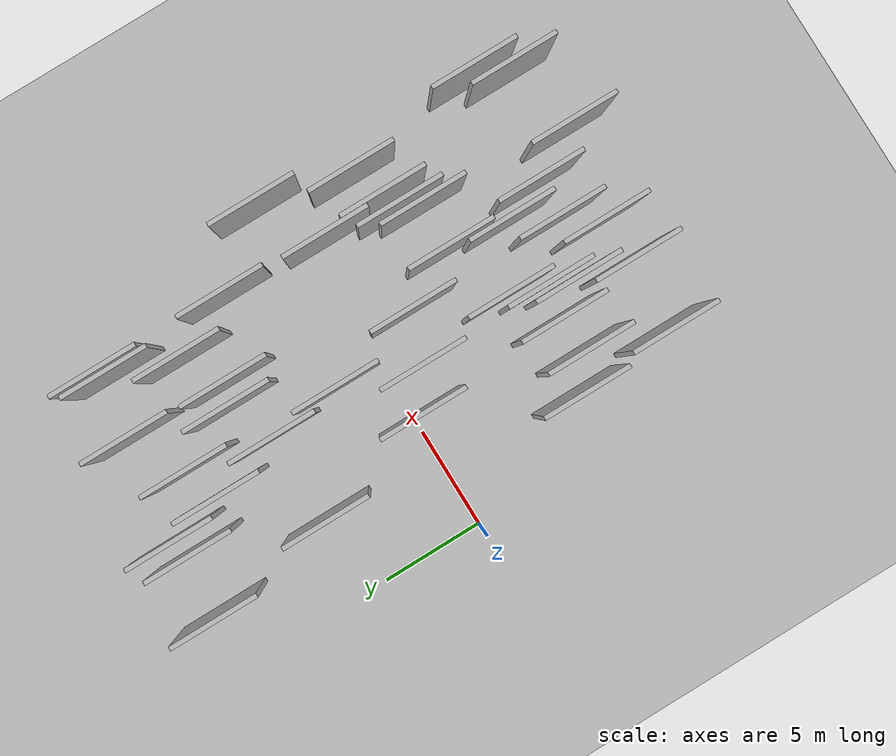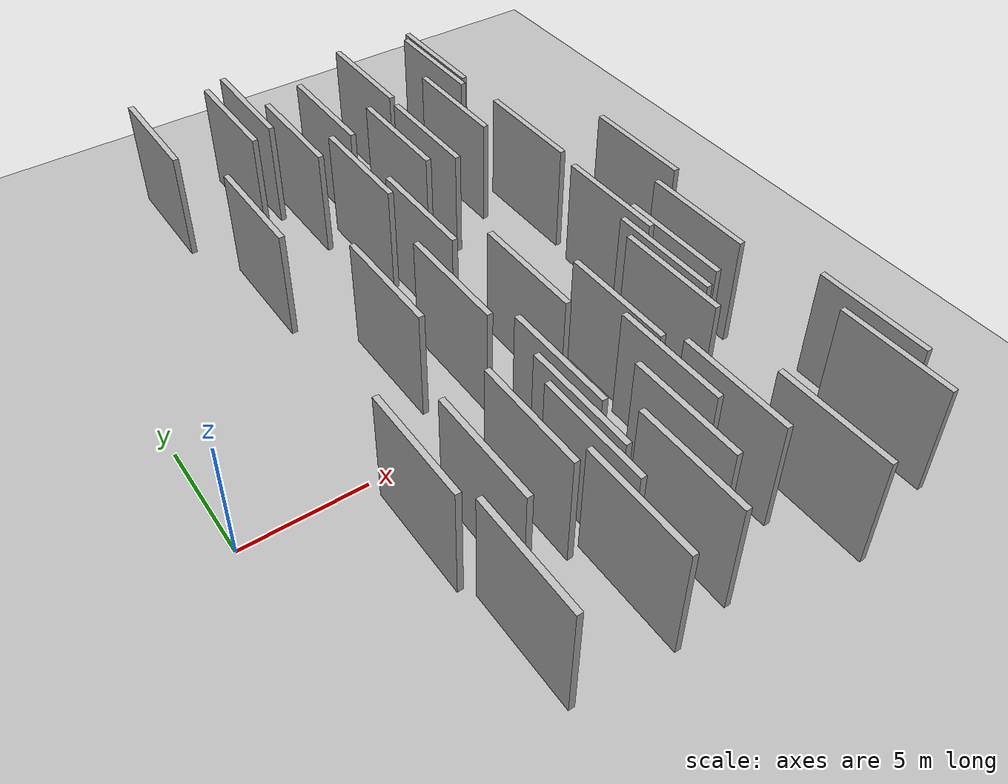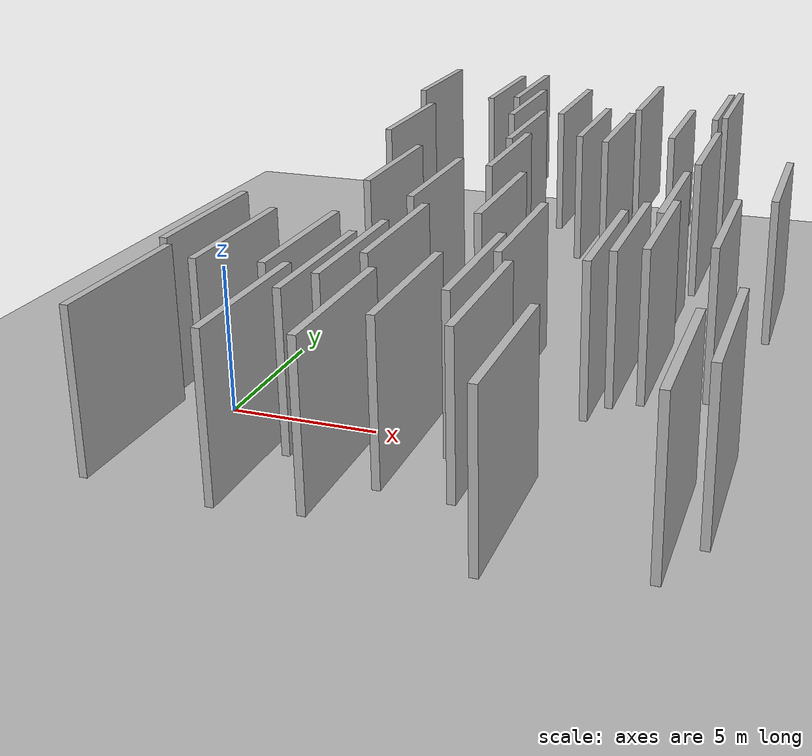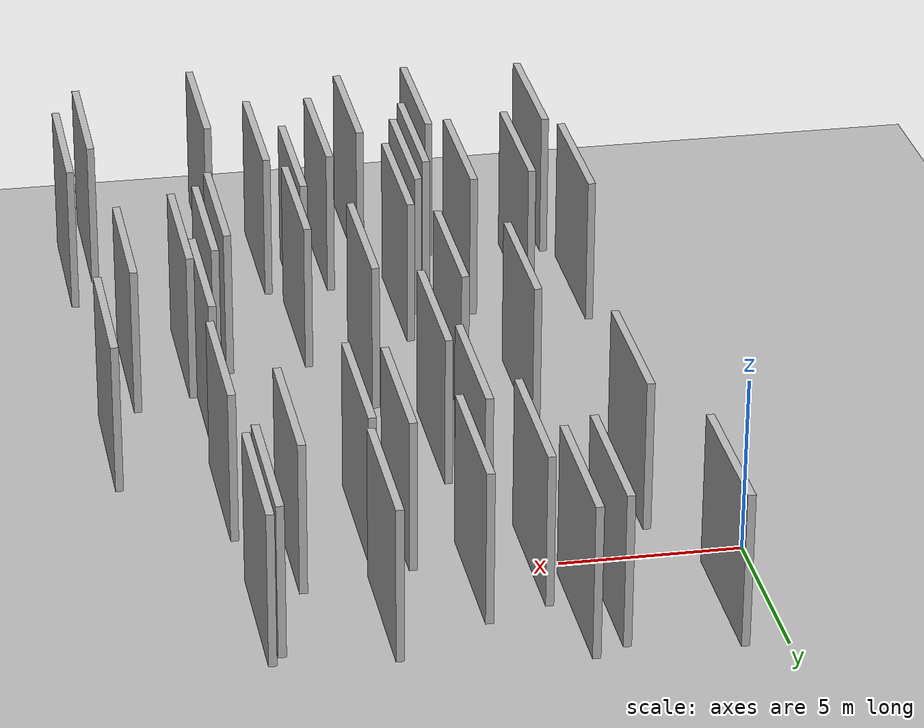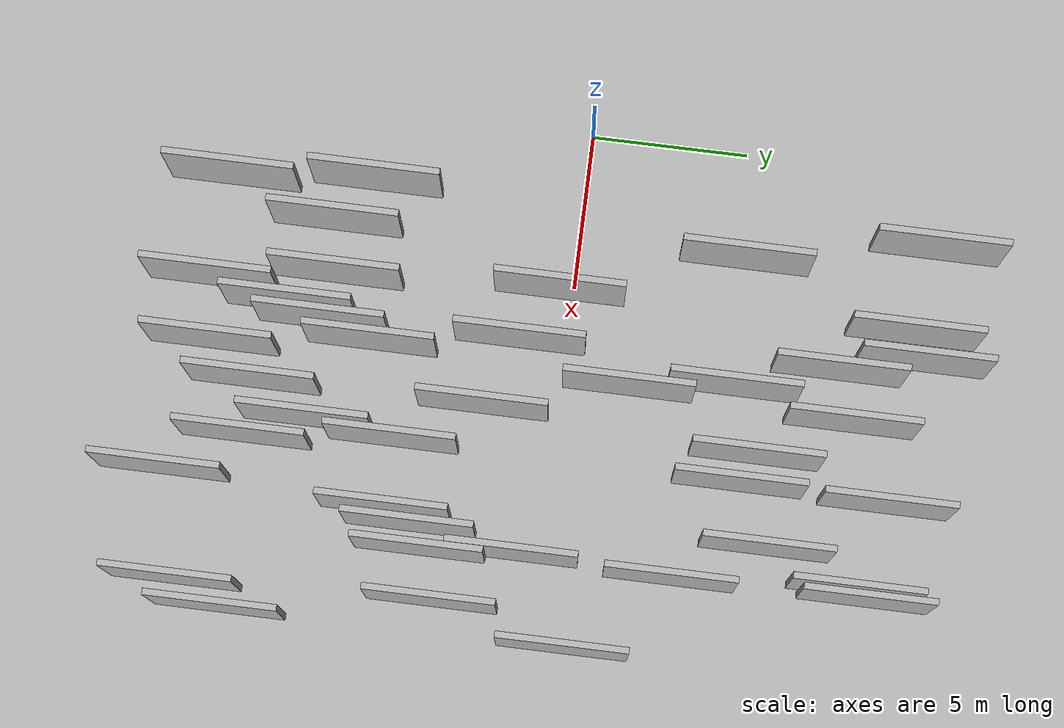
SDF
<?xml version="1.0" encoding="utf-8"?>

<sdf version="1.6">

   <world name="default">

      <gui fullscreen="0">

         <camera name="user_camera">

            <pose>-15 0 4.57585 0 0 0</pose>

            <view_controller>orbit</view_controller>

         </camera>

      </gui>

      <scene>

         <sky>

           <clouds>

             <speed>12</speed>

           </clouds>

         </sky>

         <ambient>0.4 0.4 0.4 1</ambient>

         <background>0.7 0.7 0.7 1</background>

         <shadows>1</shadows>

      </scene>

      <gravity>0 0 -9.8066</gravity>

      <magnetic_field>6e-06 2.3e-05 -4.2e-05</magnetic_field>

      <physics default="0" name="default_physics" type="ode">

         <ode>

            <solver>

               <type>quick</type>

               <iters>10</iters>

               <sor>1.0</sor>

               <use_dynamic_moi_rescaling>0</use_dynamic_moi_rescaling>

            </solver>

            <constraints>

               <cfm>0</cfm>

               <erp>0.2</erp>

               <contact_max_correcting_vel>100</contact_max_correcting_vel>

               <contact_surface_layer>0.001</contact_surface_layer>

            </constraints>

         </ode>

         <max_step_size>0.004</max_step_size>

         <real_time_factor>1</real_time_factor>

         <real_time_update_rate>250</real_time_update_rate>

      </physics>

      <light name="sun" type="directional">

         <cast_shadows>1</cast_shadows>

         <pose>0 0 10 0 0 0</pose>

         <diffuse>0.8 0.8 0.8 1</diffuse>

         <specular>0.2 0.2 0.2 1</specular>

         <attenuation>

            <range>1000</range>

            <constant>0.9</constant>

            <linear>0.01</linear>

            <quadratic>0.001</quadratic>

         </attenuation>

         <direction>-0.5 0.1 -0.9</direction>

      </light>

      <include>

         <name>ground_plane_1</name>

         <uri>model://HANNAS_ground_plane</uri>

         <pose>0 0 0  0 0 0</pose>

      </include>

      <include>

         <name>ground_plane_2</name>

         <uri>model://HANNAS_ground_plane</uri>

         <pose>100 0 0  0 0 0</pose>

      </include>

      <model name="HANNAS_wall_1">

         <static>1</static>

         <pose frame="">9.0233 8.9103 5.0 0.000000 0.000000 1.570796</pose>

         <link name="link">

            <pose frame="">0 0 2.00 0 0 0</pose>

            <collision name="collision">

               <geometry>

                  <box>

                     <size>4.00 0.2 4.00</size>

                  </box>

               </geometry>

               <max_contacts>10</max_contacts>

               <surface>

                  <contact>

                     <ode/>

                  </contact>

                  <bounce/>

                  <friction>

                     <torsional>

                        <ode/>

                     </torsional>

                     <ode/>

                  </friction>

               </surface>

            </collision>

            <visual name="visual">

               <cast_shadows>0</cast_shadows>

               <geometry>

                  <box>

                     <size>4.00 0.2 4.00</size>

                  </box>

               </geometry>

               <material>

                  <script>

                     <uri>model://HANNAS_wall/materials/scripts</uri>

                     <uri>model://HANNAS_wall/materials/textures</uri>

                     <name>vrc/HANNAS_wall</name>

                  </script>

               </material>

            </visual>

            <self_collide>0</self_collide>

            <enable_wind>0</enable_wind>

            <kinematic>0</kinematic>

         </link>

      </model>

      <model name="HANNAS_wall_2">

         <static>1</static>

         <pose frame="">12.9015 -11.6569 5.0 0.000000 0.000000 1.570796</pose>

         <link name="link">

            <pose frame="">0 0 2.00 0 0 0</pose>

            <collision name="collision">

               <geometry>

                  <box>

                     <size>4.00 0.2 4.00</size>

                  </box>

               </geometry>

               <max_contacts>10</max_contacts>

               <surface>

                  <contact>

                     <ode/>

                  </contact>

                  <bounce/>

                  <friction>

                     <torsional>

                        <ode/>

                     </torsional>

                     <ode/>

                  </friction>

               </surface>

            </collision>

            <visual name="visual">

               <cast_shadows>0</cast_shadows>

               <geometry>

                  <box>

                     <size>4.00 0.2 4.00</size>

                  </box>

               </geometry>

               <material>

                  <script>

                     <uri>model://HANNAS_wall/materials/scripts</uri>

                     <uri>model://HANNAS_wall/materials/textures</uri>

                     <name>vrc/HANNAS_wall</name>

                  </script>

               </material>

            </visual>

            <self_collide>0</self_collide>

            <enable_wind>0</enable_wind>

            <kinematic>0</kinematic>

         </link>

      </model>

      <model name="HANNAS_wall_3">

         <static>1</static>

         <pose frame="">3.3442 -6.3121 5.0 0.000000 0.000000 1.570796</pose>

         <link name="link">

            <pose frame="">0 0 2.00 0 0 0</pose>

            <collision name="collision">

               <geometry>

                  <box>

                     <size>4.00 0.2 4.00</size>

                  </box>

               </geometry>

               <max_contacts>10</max_contacts>

               <surface>

                  <contact>

                     <ode/>

                  </contact>

                  <bounce/>

                  <friction>

                     <torsional>

                        <ode/>

                     </torsional>

                     <ode/>

                  </friction>

               </surface>

            </collision>

            <visual name="visual">

               <cast_shadows>0</cast_shadows>

               <geometry>

                  <box>

                     <size>4.00 0.2 4.00</size>

                  </box>

               </geometry>

               <material>

                  <script>

                     <uri>model://HANNAS_wall/materials/scripts</uri>

                     <uri>model://HANNAS_wall/materials/textures</uri>

                     <name>vrc/HANNAS_wall</name>

                  </script>

               </material>

            </visual>

            <self_collide>0</self_collide>

            <enable_wind>0</enable_wind>

            <kinematic>0</kinematic>

         </link>

      </model>

      <model name="HANNAS_wall_4">

         <static>1</static>

         <pose frame="">11.3757 10.2288 5.0 0.000000 0.000000 1.570796</pose>

         <link name="link">

            <pose frame="">0 0 2.00 0 0 0</pose>

            <collision name="collision">

               <geometry>

                  <box>

                     <size>4.00 0.2 4.00</size>

                  </box>

               </geometry>

               <max_contacts>10</max_contacts>

               <surface>

                  <contact>

                     <ode/>

                  </contact>

                  <bounce/>

                  <friction>

                     <torsional>

                        <ode/>

                     </torsional>

                     <ode/>

                  </friction>

               </surface>

            </collision>

            <visual name="visual">

               <cast_shadows>0</cast_shadows>

               <geometry>

                  <box>

                     <size>4.00 0.2 4.00</size>

                  </box>

               </geometry>

               <material>

                  <script>

                     <uri>model://HANNAS_wall/materials/scripts</uri>

                     <uri>model://HANNAS_wall/materials/textures</uri>

                     <name>vrc/HANNAS_wall</name>

                  </script>

               </material>

            </visual>

            <self_collide>0</self_collide>

            <enable_wind>0</enable_wind>

            <kinematic>0</kinematic>

         </link>

      </model>

      <model name="HANNAS_wall_5">

         <static>1</static>

         <pose frame="">7.6818 -1.3672 5.0 0.000000 0.000000 1.570796</pose>

         <link name="link">

            <pose frame="">0 0 2.00 0 0 0</pose>

            <collision name="collision">

               <geometry>

                  <box>

                     <size>4.00 0.2 4.00</size>

                  </box>

               </geometry>

               <max_contacts>10</max_contacts>

               <surface>

                  <contact>

                     <ode/>

                  </contact>

                  <bounce/>

                  <friction>

                     <torsional>

                        <ode/>

                     </torsional>

                     <ode/>

                  </friction>

               </surface>

            </collision>

            <visual name="visual">

               <cast_shadows>0</cast_shadows>

               <geometry>

                  <box>

                     <size>4.00 0.2 4.00</size>

                  </box>

               </geometry>

               <material>

                  <script>

                     <uri>model://HANNAS_wall/materials/scripts</uri>

                     <uri>model://HANNAS_wall/materials/textures</uri>

                     <name>vrc/HANNAS_wall</name>

                  </script>

               </material>

            </visual>

            <self_collide>0</self_collide>

            <enable_wind>0</enable_wind>

            <kinematic>0</kinematic>

         </link>

      </model>

      <model name="HANNAS_wall_6">

         <static>1</static>

         <pose frame="">4.3879 5.1636 5.0 0.000000 0.000000 1.570796</pose>

         <link name="link">

            <pose frame="">0 0 2.00 0 0 0</pose>

            <collision name="collision">

               <geometry>

                  <box>

                     <size>4.00 0.2 4.00</size>

                  </box>

               </geometry>

               <max_contacts>10</max_contacts>

               <surface>

                  <contact>

                     <ode/>

                  </contact>

                  <bounce/>

                  <friction>

                     <torsional>

                        <ode/>

                     </torsional>

                     <ode/>

                  </friction>

               </surface>

            </collision>

            <visual name="visual">

               <cast_shadows>0</cast_shadows>

               <geometry>

                  <box>

                     <size>4.00 0.2 4.00</size>

                  </box>

               </geometry>

               <material>

                  <script>

                     <uri>model://HANNAS_wall/materials/scripts</uri>

                     <uri>model://HANNAS_wall/materials/textures</uri>

                     <name>vrc/HANNAS_wall</name>

                  </script>

               </material>

            </visual>

            <self_collide>0</self_collide>

            <enable_wind>0</enable_wind>

            <kinematic>0</kinematic>

         </link>

      </model>

      <model name="HANNAS_wall_7">

         <static>1</static>

         <pose frame="">13.1029 6.7793 5.0 0.000000 0.000000 1.570796</pose>

         <link name="link">

            <pose frame="">0 0 2.00 0 0 0</pose>

            <collision name="collision">

               <geometry>

                  <box>

                     <size>4.00 0.2 4.00</size>

                  </box>

               </geometry>

               <max_contacts>10</max_contacts>

               <surface>

                  <contact>

                     <ode/>

                  </contact>

                  <bounce/>

                  <friction>

                     <torsional>

                        <ode/>

                     </torsional>

                     <ode/>

                  </friction>

               </surface>

            </collision>

            <visual name="visual">

               <cast_shadows>0</cast_shadows>

               <geometry>

                  <box>

                     <size>4.00 0.2 4.00</size>

                  </box>

               </geometry>

               <material>

                  <script>

                     <uri>model://HANNAS_wall/materials/scripts</uri>

                     <uri>model://HANNAS_wall/materials/textures</uri>

                     <name>vrc/HANNAS_wall</name>

                  </script>

               </material>

            </visual>

            <self_collide>0</self_collide>

            <enable_wind>0</enable_wind>

            <kinematic>0</kinematic>

         </link>

      </model>

      <model name="HANNAS_wall_8">

         <static>1</static>

         <pose frame="">16.1886 -10.8584 5.0 0.000000 0.000000 1.570796</pose>

         <link name="link">

            <pose frame="">0 0 2.00 0 0 0</pose>

            <collision name="collision">

               <geometry>

                  <box>

                     <size>4.00 0.2 4.00</size>

                  </box>

               </geometry>

               <max_contacts>10</max_contacts>

               <surface>

                  <contact>

                     <ode/>

                  </contact>

                  <bounce/>

                  <friction>

                     <torsional>

                        <ode/>

                     </torsional>

                     <ode/>

                  </friction>

               </surface>

            </collision>

            <visual name="visual">

               <cast_shadows>0</cast_shadows>

               <geometry>

                  <box>

                     <size>4.00 0.2 4.00</size>

                  </box>

               </geometry>

               <material>

                  <script>

                     <uri>model://HANNAS_wall/materials/scripts</uri>

                     <uri>model://HANNAS_wall/materials/textures</uri>

                     <name>vrc/HANNAS_wall</name>

                  </script>

               </material>

            </visual>

            <self_collide>0</self_collide>

            <enable_wind>0</enable_wind>

            <kinematic>0</kinematic>

         </link>

      </model>

      <model name="HANNAS_wall_9">

         <static>1</static>

         <pose frame="">14.2049 -0.7971 5.0 0.000000 0.000000 1.570796</pose>

         <link name="link">

            <pose frame="">0 0 2.00 0 0 0</pose>

            <collision name="collision">

               <geometry>

                  <box>

                     <size>4.00 0.2 4.00</size>

                  </box>

               </geometry>

               <max_contacts>10</max_contacts>

               <surface>

                  <contact>

                     <ode/>

                  </contact>

                  <bounce/>

                  <friction>

                     <torsional>

                        <ode/>

                     </torsional>

                     <ode/>

                  </friction>

               </surface>

            </collision>

            <visual name="visual">

               <cast_shadows>0</cast_shadows>

               <geometry>

                  <box>

                     <size>4.00 0.2 4.00</size>

                  </box>

               </geometry>

               <material>

                  <script>

                     <uri>model://HANNAS_wall/materials/scripts</uri>

                     <uri>model://HANNAS_wall/materials/textures</uri>

                     <name>vrc/HANNAS_wall</name>

                  </script>

               </material>

            </visual>

            <self_collide>0</self_collide>

            <enable_wind>0</enable_wind>

            <kinematic>0</kinematic>

         </link>

      </model>

      <model name="HANNAS_wall_10">

         <static>1</static>

         <pose frame="">6.9080 -10.9267 5.0 0.000000 0.000000 1.570796</pose>

         <link name="link">

            <pose frame="">0 0 2.00 0 0 0</pose>

            <collision name="collision">

               <geometry>

                  <box>

                     <size>4.00 0.2 4.00</size>

                  </box>

               </geometry>

               <max_contacts>10</max_contacts>

               <surface>

                  <contact>

                     <ode/>

                  </contact>

                  <bounce/>

                  <friction>

                     <torsional>

                        <ode/>

                     </torsional>

                     <ode/>

                  </friction>

               </surface>

            </collision>

            <visual name="visual">

               <cast_shadows>0</cast_shadows>

               <geometry>

                  <box>

                     <size>4.00 0.2 4.00</size>

                  </box>

               </geometry>

               <material>

                  <script>

                     <uri>model://HANNAS_wall/materials/scripts</uri>

                     <uri>model://HANNAS_wall/materials/textures</uri>

                     <name>vrc/HANNAS_wall</name>

                  </script>

               </material>

            </visual>

            <self_collide>0</self_collide>

            <enable_wind>0</enable_wind>

            <kinematic>0</kinematic>

         </link>

      </model>

      <model name="HANNAS_wall_11">

         <static>1</static>

         <pose frame="">14.0257 9.5790 5.0 0.000000 0.000000 1.570796</pose>

         <link name="link">

            <pose frame="">0 0 2.00 0 0 0</pose>

            <collision name="collision">

               <geometry>

                  <box>

                     <size>4.00 0.2 4.00</size>

                  </box>

               </geometry>

               <max_contacts>10</max_contacts>

               <surface>

                  <contact>

                     <ode/>

                  </contact>

                  <bounce/>

                  <friction>

                     <torsional>

                        <ode/>

                     </torsional>

                     <ode/>

                  </friction>

               </surface>

            </collision>

            <visual name="visual">

               <cast_shadows>0</cast_shadows>

               <geometry>

                  <box>

                     <size>4.00 0.2 4.00</size>

                  </box>

               </geometry>

               <material>

                  <script>

                     <uri>model://HANNAS_wall/materials/scripts</uri>

                     <uri>model://HANNAS_wall/materials/textures</uri>

                     <name>vrc/HANNAS_wall</name>

                  </script>

               </material>

            </visual>

            <self_collide>0</self_collide>

            <enable_wind>0</enable_wind>

            <kinematic>0</kinematic>

         </link>

      </model>

      <model name="HANNAS_wall_12">

         <static>1</static>

         <pose frame="">7.8219 -7.4114 5.0 0.000000 0.000000 1.570796</pose>

         <link name="link">

            <pose frame="">0 0 2.00 0 0 0</pose>

            <collision name="collision">

               <geometry>

                  <box>

                     <size>4.00 0.2 4.00</size>

                  </box>

               </geometry>

               <max_contacts>10</max_contacts>

               <surface>

                  <contact>

                     <ode/>

                  </contact>

                  <bounce/>

                  <friction>

                     <torsional>

                        <ode/>

                     </torsional>

                     <ode/>

                  </friction>

               </surface>

            </collision>

            <visual name="visual">

               <cast_shadows>0</cast_shadows>

               <geometry>

                  <box>

                     <size>4.00 0.2 4.00</size>

                  </box>

               </geometry>

               <material>

                  <script>

                     <uri>model://HANNAS_wall/materials/scripts</uri>

                     <uri>model://HANNAS_wall/materials/textures</uri>

                     <name>vrc/HANNAS_wall</name>

                  </script>

               </material>

            </visual>

            <self_collide>0</self_collide>

            <enable_wind>0</enable_wind>

            <kinematic>0</kinematic>

         </link>

      </model>

      <model name="HANNAS_wall_13">

         <static>1</static>

         <pose frame="">8.2981 -5.8480 5.0 0.000000 0.000000 1.570796</pose>

         <link name="link">

            <pose frame="">0 0 2.00 0 0 0</pose>

            <collision name="collision">

               <geometry>

                  <box>

                     <size>4.00 0.2 4.00</size>

                  </box>

               </geometry>

               <max_contacts>10</max_contacts>

               <surface>

                  <contact>

                     <ode/>

                  </contact>

                  <bounce/>

                  <friction>

                     <torsional>

                        <ode/>

                     </torsional>

                     <ode/>

                  </friction>

               </surface>

            </collision>

            <visual name="visual">

               <cast_shadows>0</cast_shadows>

               <geometry>

                  <box>

                     <size>4.00 0.2 4.00</size>

                  </box>

               </geometry>

               <material>

                  <script>

                     <uri>model://HANNAS_wall/materials/scripts</uri>

                     <uri>model://HANNAS_wall/materials/textures</uri>

                     <name>vrc/HANNAS_wall</name>

                  </script>

               </material>

            </visual>

            <self_collide>0</self_collide>

            <enable_wind>0</enable_wind>

            <kinematic>0</kinematic>

         </link>

      </model>

      <model name="HANNAS_wall_14">

         <static>1</static>

         <pose frame="">6.3659 -7.1379 5.0 0.000000 0.000000 1.570796</pose>

         <link name="link">

            <pose frame="">0 0 2.00 0 0 0</pose>

            <collision name="collision">

               <geometry>

                  <box>

                     <size>4.00 0.2 4.00</size>

                  </box>

               </geometry>

               <max_contacts>10</max_contacts>

               <surface>

                  <contact>

                     <ode/>

                  </contact>

                  <bounce/>

                  <friction>

                     <torsional>

                        <ode/>

                     </torsional>

                     <ode/>

                  </friction>

               </surface>

            </collision>

            <visual name="visual">

               <cast_shadows>0</cast_shadows>

               <geometry>

                  <box>

                     <size>4.00 0.2 4.00</size>

                  </box>

               </geometry>

               <material>

                  <script>

                     <uri>model://HANNAS_wall/materials/scripts</uri>

                     <uri>model://HANNAS_wall/materials/textures</uri>

                     <name>vrc/HANNAS_wall</name>

                  </script>

               </material>

            </visual>

            <self_collide>0</self_collide>

            <enable_wind>0</enable_wind>

            <kinematic>0</kinematic>

         </link>

      </model>

      <model name="HANNAS_wall_15">

         <static>1</static>

         <pose frame="">4.7404 -7.3743 5.0 0.000000 0.000000 1.570796</pose>

         <link name="link">

            <pose frame="">0 0 2.00 0 0 0</pose>

            <collision name="collision">

               <geometry>

                  <box>

                     <size>4.00 0.2 4.00</size>

                  </box>

               </geometry>

               <max_contacts>10</max_contacts>

               <surface>

                  <contact>

                     <ode/>

                  </contact>

                  <bounce/>

                  <friction>

                     <torsional>

                        <ode/>

                     </torsional>

                     <ode/>

                  </friction>

               </surface>

            </collision>

            <visual name="visual">

               <cast_shadows>0</cast_shadows>

               <geometry>

                  <box>

                     <size>4.00 0.2 4.00</size>

                  </box>

               </geometry>

               <material>

                  <script>

                     <uri>model://HANNAS_wall/materials/scripts</uri>

                     <uri>model://HANNAS_wall/materials/textures</uri>

                     <name>vrc/HANNAS_wall</name>

                  </script>

               </material>

            </visual>

            <self_collide>0</self_collide>

            <enable_wind>0</enable_wind>

            <kinematic>0</kinematic>

         </link>

      </model>

      <model name="HANNAS_wall_16">

         <static>1</static>

         <pose frame="">9.8407 -2.2318 5.0 0.000000 0.000000 1.570796</pose>

         <link name="link">

            <pose frame="">0 0 2.00 0 0 0</pose>

            <collision name="collision">

               <geometry>

                  <box>

                     <size>4.00 0.2 4.00</size>

                  </box>

               </geometry>

               <max_contacts>10</max_contacts>

               <surface>

                  <contact>

                     <ode/>

                  </contact>

                  <bounce/>

                  <friction>

                     <torsional>

                        <ode/>

                     </torsional>

                     <ode/>

                  </friction>

               </surface>

            </collision>

            <visual name="visual">

               <cast_shadows>0</cast_shadows>

               <geometry>

                  <box>

                     <size>4.00 0.2 4.00</size>

                  </box>

               </geometry>

               <material>

                  <script>

                     <uri>model://HANNAS_wall/materials/scripts</uri>

                     <uri>model://HANNAS_wall/materials/textures</uri>

                     <name>vrc/HANNAS_wall</name>

                  </script>

               </material>

            </visual>

            <self_collide>0</self_collide>

            <enable_wind>0</enable_wind>

            <kinematic>0</kinematic>

         </link>

      </model>

      <model name="HANNAS_wall_17">

         <static>1</static>

         <pose frame="">13.2889 -4.8023 5.0 0.000000 0.000000 1.570796</pose>

         <link name="link">

            <pose frame="">0 0 2.00 0 0 0</pose>

            <collision name="collision">

               <geometry>

                  <box>

                     <size>4.00 0.2 4.00</size>

                  </box>

               </geometry>

               <max_contacts>10</max_contacts>

               <surface>

                  <contact>

                     <ode/>

                  </contact>

                  <bounce/>

                  <friction>

                     <torsional>

                        <ode/>

                     </torsional>

                     <ode/>

                  </friction>

               </surface>

            </collision>

            <visual name="visual">

               <cast_shadows>0</cast_shadows>

               <geometry>

                  <box>

                     <size>4.00 0.2 4.00</size>

                  </box>

               </geometry>

               <material>

                  <script>

                     <uri>model://HANNAS_wall/materials/scripts</uri>

                     <uri>model://HANNAS_wall/materials/textures</uri>

                     <name>vrc/HANNAS_wall</name>

                  </script>

               </material>

            </visual>

            <self_collide>0</self_collide>

            <enable_wind>0</enable_wind>

            <kinematic>0</kinematic>

         </link>

      </model>

      <model name="HANNAS_wall_18">

         <static>1</static>

         <pose frame="">14.2999 9.9279 5.0 0.000000 0.000000 1.570796</pose>

         <link name="link">

            <pose frame="">0 0 2.00 0 0 0</pose>

            <collision name="collision">

               <geometry>

                  <box>

                     <size>4.00 0.2 4.00</size>

                  </box>

               </geometry>

               <max_contacts>10</max_contacts>

               <surface>

                  <contact>

                     <ode/>

                  </contact>

                  <bounce/>

                  <friction>

                     <torsional>

                        <ode/>

                     </torsional>

                     <ode/>

                  </friction>

               </surface>

            </collision>

            <visual name="visual">

               <cast_shadows>0</cast_shadows>

               <geometry>

                  <box>

                     <size>4.00 0.2 4.00</size>

                  </box>

               </geometry>

               <material>

                  <script>

                     <uri>model://HANNAS_wall/materials/scripts</uri>

                     <uri>model://HANNAS_wall/materials/textures</uri>

                     <name>vrc/HANNAS_wall</name>

                  </script>

               </material>

            </visual>

            <self_collide>0</self_collide>

            <enable_wind>0</enable_wind>

            <kinematic>0</kinematic>

         </link>

      </model>

      <model name="HANNAS_wall_19">

         <static>1</static>

         <pose frame="">13.7115 -3.9789 5.0 0.000000 0.000000 1.570796</pose>

         <link name="link">

            <pose frame="">0 0 2.00 0 0 0</pose>

            <collision name="collision">

               <geometry>

                  <box>

                     <size>4.00 0.2 4.00</size>

                  </box>

               </geometry>

               <max_contacts>10</max_contacts>

               <surface>

                  <contact>

                     <ode/>

                  </contact>

                  <bounce/>

                  <friction>

                     <torsional>

                        <ode/>

                     </torsional>

                     <ode/>

                  </friction>

               </surface>

            </collision>

            <visual name="visual">

               <cast_shadows>0</cast_shadows>

               <geometry>

                  <box>

                     <size>4.00 0.2 4.00</size>

                  </box>

               </geometry>

               <material>

                  <script>

                     <uri>model://HANNAS_wall/materials/scripts</uri>

                     <uri>model://HANNAS_wall/materials/textures</uri>

                     <name>vrc/HANNAS_wall</name>

                  </script>

               </material>

            </visual>

            <self_collide>0</self_collide>

            <enable_wind>0</enable_wind>

            <kinematic>0</kinematic>

         </link>

      </model>

      <model name="HANNAS_wall_20">

         <static>1</static>

         <pose frame="">11.6187 -9.3076 5.0 0.000000 0.000000 1.570796</pose>

         <link name="link">

            <pose frame="">0 0 2.00 0 0 0</pose>

            <collision name="collision">

               <geometry>

                  <box>

                     <size>4.00 0.2 4.00</size>

                  </box>

               </geometry>

               <max_contacts>10</max_contacts>

               <surface>

                  <contact>

                     <ode/>

                  </contact>

                  <bounce/>

                  <friction>

                     <torsional>

                        <ode/>

                     </torsional>

                     <ode/>

                  </friction>

               </surface>

            </collision>

            <visual name="visual">

               <cast_shadows>0</cast_shadows>

               <geometry>

                  <box>

                     <size>4.00 0.2 4.00</size>

                  </box>

               </geometry>

               <material>

                  <script>

                     <uri>model://HANNAS_wall/materials/scripts</uri>

                     <uri>model://HANNAS_wall/materials/textures</uri>

                     <name>vrc/HANNAS_wall</name>

                  </script>

               </material>

            </visual>

            <self_collide>0</self_collide>

            <enable_wind>0</enable_wind>

            <kinematic>0</kinematic>

         </link>

      </model>

      <model name="HANNAS_wall_21">

         <static>1</static>

         <pose frame="">3.7084 -10.6750 5.0 0.000000 0.000000 1.570796</pose>

         <link name="link">

            <pose frame="">0 0 2.00 0 0 0</pose>

            <collision name="collision">

               <geometry>

                  <box>

                     <size>4.00 0.2 4.00</size>

                  </box>

               </geometry>

               <max_contacts>10</max_contacts>

               <surface>

                  <contact>

                     <ode/>

                  </contact>

                  <bounce/>

                  <friction>

                     <torsional>

                        <ode/>

                     </torsional>

                     <ode/>

                  </friction>

               </surface>

            </collision>

            <visual name="visual">

               <cast_shadows>0</cast_shadows>

               <geometry>

                  <box>

                     <size>4.00 0.2 4.00</size>

                  </box>

               </geometry>

               <material>

                  <script>

                     <uri>model://HANNAS_wall/materials/scripts</uri>

                     <uri>model://HANNAS_wall/materials/textures</uri>

                     <name>vrc/HANNAS_wall</name>

                  </script>

               </material>

            </visual>

            <self_collide>0</self_collide>

            <enable_wind>0</enable_wind>

            <kinematic>0</kinematic>

         </link>

      </model>

      <model name="HANNAS_wall_22">

         <static>1</static>

         <pose frame="">3.3671 10.9305 5.0 0.000000 0.000000 1.570796</pose>

         <link name="link">

            <pose frame="">0 0 2.00 0 0 0</pose>

            <collision name="collision">

               <geometry>

                  <box>

                     <size>4.00 0.2 4.00</size>

                  </box>

               </geometry>

               <max_contacts>10</max_contacts>

               <surface>

                  <contact>

                     <ode/>

                  </contact>

                  <bounce/>

                  <friction>

                     <torsional>

                        <ode/>

                     </torsional>

                     <ode/>

                  </friction>

               </surface>

            </collision>

            <visual name="visual">

               <cast_shadows>0</cast_shadows>

               <geometry>

                  <box>

                     <size>4.00 0.2 4.00</size>

                  </box>

               </geometry>

               <material>

                  <script>

                     <uri>model://HANNAS_wall/materials/scripts</uri>

                     <uri>model://HANNAS_wall/materials/textures</uri>

                     <name>vrc/HANNAS_wall</name>

                  </script>

               </material>

            </visual>

            <self_collide>0</self_collide>

            <enable_wind>0</enable_wind>

            <kinematic>0</kinematic>

         </link>

      </model>

      <model name="HANNAS_wall_23">

         <static>1</static>

         <pose frame="">10.3530 6.1501 5.0 0.000000 0.000000 1.570796</pose>

         <link name="link">

            <pose frame="">0 0 2.00 0 0 0</pose>

            <collision name="collision">

               <geometry>

                  <box>

                     <size>4.00 0.2 4.00</size>

                  </box>

               </geometry>

               <max_contacts>10</max_contacts>

               <surface>

                  <contact>

                     <ode/>

                  </contact>

                  <bounce/>

                  <friction>

                     <torsional>

                        <ode/>

                     </torsional>

                     <ode/>

                  </friction>

               </surface>

            </collision>

            <visual name="visual">

               <cast_shadows>0</cast_shadows>

               <geometry>

                  <box>

                     <size>4.00 0.2 4.00</size>

                  </box>

               </geometry>

               <material>

                  <script>

                     <uri>model://HANNAS_wall/materials/scripts</uri>

                     <uri>model://HANNAS_wall/materials/textures</uri>

                     <name>vrc/HANNAS_wall</name>

                  </script>

               </material>

            </visual>

            <self_collide>0</self_collide>

            <enable_wind>0</enable_wind>

            <kinematic>0</kinematic>

         </link>

      </model>

      <model name="HANNAS_wall_24">

         <static>1</static>

         <pose frame="">11.2575 5.7337 5.0 0.000000 0.000000 1.570796</pose>

         <link name="link">

            <pose frame="">0 0 2.00 0 0 0</pose>

            <collision name="collision">

               <geometry>

                  <box>

                     <size>4.00 0.2 4.00</size>

                  </box>

               </geometry>

               <max_contacts>10</max_contacts>

               <surface>

                  <contact>

                     <ode/>

                  </contact>

                  <bounce/>

                  <friction>

                     <torsional>

                        <ode/>

                     </torsional>

                     <ode/>

                  </friction>

               </surface>

            </collision>

            <visual name="visual">

               <cast_shadows>0</cast_shadows>

               <geometry>

                  <box>

                     <size>4.00 0.2 4.00</size>

                  </box>

               </geometry>

               <material>

                  <script>

                     <uri>model://HANNAS_wall/materials/scripts</uri>

                     <uri>model://HANNAS_wall/materials/textures</uri>

                     <name>vrc/HANNAS_wall</name>

                  </script>

               </material>

            </visual>

            <self_collide>0</self_collide>

            <enable_wind>0</enable_wind>

            <kinematic>0</kinematic>

         </link>

      </model>

      <model name="HANNAS_wall_25">

         <static>1</static>

         <pose frame="">7.4718 8.3551 5.0 0.000000 0.000000 1.570796</pose>

         <link name="link">

            <pose frame="">0 0 2.00 0 0 0</pose>

            <collision name="collision">

               <geometry>

                  <box>

                     <size>4.00 0.2 4.00</size>

                  </box>

               </geometry>

               <max_contacts>10</max_contacts>

               <surface>

                  <contact>

                     <ode/>

                  </contact>

                  <bounce/>

                  <friction>

                     <torsional>

                        <ode/>

                     </torsional>

                     <ode/>

                  </friction>

               </surface>

            </collision>

            <visual name="visual">

               <cast_shadows>0</cast_shadows>

               <geometry>

                  <box>

                     <size>4.00 0.2 4.00</size>

                  </box>

               </geometry>

               <material>

                  <script>

                     <uri>model://HANNAS_wall/materials/scripts</uri>

                     <uri>model://HANNAS_wall/materials/textures</uri>

                     <name>vrc/HANNAS_wall</name>

                  </script>

               </material>

            </visual>

            <self_collide>0</self_collide>

            <enable_wind>0</enable_wind>

            <kinematic>0</kinematic>

         </link>

      </model>

      <model name="HANNAS_wall_26">

         <static>1</static>

         <pose frame="">9.9111 -9.2440 5.0 0.000000 0.000000 1.570796</pose>

         <link name="link">

            <pose frame="">0 0 2.00 0 0 0</pose>

            <collision name="collision">

               <geometry>

                  <box>

                     <size>4.00 0.2 4.00</size>

                  </box>

               </geometry>

               <max_contacts>10</max_contacts>

               <surface>

                  <contact>

                     <ode/>

                  </contact>

                  <bounce/>

                  <friction>

                     <torsional>

                        <ode/>

                     </torsional>

                     <ode/>

                  </friction>

               </surface>

            </collision>

            <visual name="visual">

               <cast_shadows>0</cast_shadows>

               <geometry>

                  <box>

                     <size>4.00 0.2 4.00</size>

                  </box>

               </geometry>

               <material>

                  <script>

                     <uri>model://HANNAS_wall/materials/scripts</uri>

                     <uri>model://HANNAS_wall/materials/textures</uri>

                     <name>vrc/HANNAS_wall</name>

                  </script>

               </material>

            </visual>

            <self_collide>0</self_collide>

            <enable_wind>0</enable_wind>

            <kinematic>0</kinematic>

         </link>

      </model>

      <model name="HANNAS_wall_27">

         <static>1</static>

         <pose frame="">14.3718 4.0039 5.0 0.000000 0.000000 1.570796</pose>

         <link name="link">

            <pose frame="">0 0 2.00 0 0 0</pose>

            <collision name="collision">

               <geometry>

                  <box>

                     <size>4.00 0.2 4.00</size>

                  </box>

               </geometry>

               <max_contacts>10</max_contacts>

               <surface>

                  <contact>

                     <ode/>

                  </contact>

                  <bounce/>

                  <friction>

                     <torsional>

                        <ode/>

                     </torsional>

                     <ode/>

                  </friction>

               </surface>

            </collision>

            <visual name="visual">

               <cast_shadows>0</cast_shadows>

               <geometry>

                  <box>

                     <size>4.00 0.2 4.00</size>

                  </box>

               </geometry>

               <material>

                  <script>

                     <uri>model://HANNAS_wall/materials/scripts</uri>

                     <uri>model://HANNAS_wall/materials/textures</uri>

                     <name>vrc/HANNAS_wall</name>

                  </script>

               </material>

            </visual>

            <self_collide>0</self_collide>

            <enable_wind>0</enable_wind>

            <kinematic>0</kinematic>

         </link>

      </model>

      <model name="HANNAS_wall_28">

         <static>1</static>

         <pose frame="">8.3450 5.2514 5.0 0.000000 0.000000 1.570796</pose>

         <link name="link">

            <pose frame="">0 0 2.00 0 0 0</pose>

            <collision name="collision">

               <geometry>

                  <box>

                     <size>4.00 0.2 4.00</size>

                  </box>

               </geometry>

               <max_contacts>10</max_contacts>

               <surface>

                  <contact>

                     <ode/>

                  </contact>

                  <bounce/>

                  <friction>

                     <torsional>

                        <ode/>

                     </torsional>

                     <ode/>

                  </friction>

               </surface>

            </collision>

            <visual name="visual">

               <cast_shadows>0</cast_shadows>

               <geometry>

                  <box>

                     <size>4.00 0.2 4.00</size>

                  </box>

               </geometry>

               <material>

                  <script>

                     <uri>model://HANNAS_wall/materials/scripts</uri>

                     <uri>model://HANNAS_wall/materials/textures</uri>

                     <name>vrc/HANNAS_wall</name>

                  </script>

               </material>

            </visual>

            <self_collide>0</self_collide>

            <enable_wind>0</enable_wind>

            <kinematic>0</kinematic>

         </link>

      </model>

      <model name="HANNAS_wall_29">

         <static>1</static>

         <pose frame="">8.8608 -10.6576 5.0 0.000000 0.000000 1.570796</pose>

         <link name="link">

            <pose frame="">0 0 2.00 0 0 0</pose>

            <collision name="collision">

               <geometry>

                  <box>

                     <size>4.00 0.2 4.00</size>

                  </box>

               </geometry>

               <max_contacts>10</max_contacts>

               <surface>

                  <contact>

                     <ode/>

                  </contact>

                  <bounce/>

                  <friction>

                     <torsional>

                        <ode/>

                     </torsional>

                     <ode/>

                  </friction>

               </surface>

            </collision>

            <visual name="visual">

               <cast_shadows>0</cast_shadows>

               <geometry>

                  <box>

                     <size>4.00 0.2 4.00</size>

                  </box>

               </geometry>

               <material>

                  <script>

                     <uri>model://HANNAS_wall/materials/scripts</uri>

                     <uri>model://HANNAS_wall/materials/textures</uri>

                     <name>vrc/HANNAS_wall</name>

                  </script>

               </material>

            </visual>

            <self_collide>0</self_collide>

            <enable_wind>0</enable_wind>

            <kinematic>0</kinematic>

         </link>

      </model>

      <model name="HANNAS_wall_30">

         <static>1</static>

         <pose frame="">11.1900 -4.8281 5.0 0.000000 0.000000 1.570796</pose>

         <link name="link">

            <pose frame="">0 0 2.00 0 0 0</pose>

            <collision name="collision">

               <geometry>

                  <box>

                     <size>4.00 0.2 4.00</size>

                  </box>

               </geometry>

               <max_contacts>10</max_contacts>

               <surface>

                  <contact>

                     <ode/>

                  </contact>

                  <bounce/>

                  <friction>

                     <torsional>

                        <ode/>

                     </torsional>

                     <ode/>

                  </friction>

               </surface>

            </collision>

            <visual name="visual">

               <cast_shadows>0</cast_shadows>

               <geometry>

                  <box>

                     <size>4.00 0.2 4.00</size>

                  </box>

               </geometry>

               <material>

                  <script>

                     <uri>model://HANNAS_wall/materials/scripts</uri>

                     <uri>model://HANNAS_wall/materials/textures</uri>

                     <name>vrc/HANNAS_wall</name>

                  </script>

               </material>

            </visual>

            <self_collide>0</self_collide>

            <enable_wind>0</enable_wind>

            <kinematic>0</kinematic>

         </link>

      </model>

      <model name="HANNAS_wall_31">

         <static>1</static>

         <pose frame="">8.7339 2.0662 5.0 0.000000 0.000000 1.570796</pose>

         <link name="link">

            <pose frame="">0 0 2.00 0 0 0</pose>

            <collision name="collision">

               <geometry>

                  <box>

                     <size>4.00 0.2 4.00</size>

                  </box>

               </geometry>

               <max_contacts>10</max_contacts>

               <surface>

                  <contact>

                     <ode/>

                  </contact>

                  <bounce/>

                  <friction>

                     <torsional>

                        <ode/>

                     </torsional>

                     <ode/>

                  </friction>

               </surface>

            </collision>

            <visual name="visual">

               <cast_shadows>0</cast_shadows>

               <geometry>

                  <box>

                     <size>4.00 0.2 4.00</size>

                  </box>

               </geometry>

               <material>

                  <script>

                     <uri>model://HANNAS_wall/materials/scripts</uri>

                     <uri>model://HANNAS_wall/materials/textures</uri>

                     <name>vrc/HANNAS_wall</name>

                  </script>

               </material>

            </visual>

            <self_collide>0</self_collide>

            <enable_wind>0</enable_wind>

            <kinematic>0</kinematic>

         </link>

      </model>

      <model name="HANNAS_wall_32">

         <static>1</static>

         <pose frame="">7.4187 -8.4634 5.0 0.000000 0.000000 1.570796</pose>

         <link name="link">

            <pose frame="">0 0 2.00 0 0 0</pose>

            <collision name="collision">

               <geometry>

                  <box>

                     <size>4.00 0.2 4.00</size>

                  </box>

               </geometry>

               <max_contacts>10</max_contacts>

               <surface>

                  <contact>

                     <ode/>

                  </contact>

                  <bounce/>

                  <friction>

                     <torsional>

                        <ode/>

                     </torsional>

                     <ode/>

                  </friction>

               </surface>

            </collision>

            <visual name="visual">

               <cast_shadows>0</cast_shadows>

               <geometry>

                  <box>

                     <size>4.00 0.2 4.00</size>

                  </box>

               </geometry>

               <material>

                  <script>

                     <uri>model://HANNAS_wall/materials/scripts</uri>

                     <uri>model://HANNAS_wall/materials/textures</uri>

                     <name>vrc/HANNAS_wall</name>

                  </script>

               </material>

            </visual>

            <self_collide>0</self_collide>

            <enable_wind>0</enable_wind>

            <kinematic>0</kinematic>

         </link>

      </model>

      <model name="HANNAS_wall_33">

         <static>1</static>

         <pose frame="">16.8814 -9.4202 5.0 0.000000 0.000000 1.570796</pose>

         <link name="link">

            <pose frame="">0 0 2.00 0 0 0</pose>

            <collision name="collision">

               <geometry>

                  <box>

                     <size>4.00 0.2 4.00</size>

                  </box>

               </geometry>

               <max_contacts>10</max_contacts>

               <surface>

                  <contact>

                     <ode/>

                  </contact>

                  <bounce/>

                  <friction>

                     <torsional>

                        <ode/>

                     </torsional>

                     <ode/>

                  </friction>

               </surface>

            </collision>

            <visual name="visual">

               <cast_shadows>0</cast_shadows>

               <geometry>

                  <box>

                     <size>4.00 0.2 4.00</size>

                  </box>

               </geometry>

               <material>

                  <script>

                     <uri>model://HANNAS_wall/materials/scripts</uri>

                     <uri>model://HANNAS_wall/materials/textures</uri>

                     <name>vrc/HANNAS_wall</name>

                  </script>

               </material>

            </visual>

            <self_collide>0</self_collide>

            <enable_wind>0</enable_wind>

            <kinematic>0</kinematic>

         </link>

      </model>

      <model name="HANNAS_wall_34">

         <static>1</static>

         <pose frame="">15.9137 -3.0446 5.0 0.000000 0.000000 1.570796</pose>

         <link name="link">

            <pose frame="">0 0 2.00 0 0 0</pose>

            <collision name="collision">

               <geometry>

                  <box>

                     <size>4.00 0.2 4.00</size>

                  </box>

               </geometry>

               <max_contacts>10</max_contacts>

               <surface>

                  <contact>

                     <ode/>

                  </contact>

                  <bounce/>

                  <friction>

                     <torsional>

                        <ode/>

                     </torsional>

                     <ode/>

                  </friction>

               </surface>

            </collision>

            <visual name="visual">

               <cast_shadows>0</cast_shadows>

               <geometry>

                  <box>

                     <size>4.00 0.2 4.00</size>

                  </box>

               </geometry>

               <material>

                  <script>

                     <uri>model://HANNAS_wall/materials/scripts</uri>

                     <uri>model://HANNAS_wall/materials/textures</uri>

                     <name>vrc/HANNAS_wall</name>

                  </script>

               </material>

            </visual>

            <self_collide>0</self_collide>

            <enable_wind>0</enable_wind>

            <kinematic>0</kinematic>

         </link>

      </model>

      <model name="HANNAS_wall_35">

         <static>1</static>

         <pose frame="">16.8483 1.0429 5.0 0.000000 0.000000 1.570796</pose>

         <link name="link">

            <pose frame="">0 0 2.00 0 0 0</pose>

            <collision name="collision">

               <geometry>

                  <box>

                     <size>4.00 0.2 4.00</size>

                  </box>

               </geometry>

               <max_contacts>10</max_contacts>

               <surface>

                  <contact>

                     <ode/>

                  </contact>

                  <bounce/>

                  <friction>

                     <torsional>

                        <ode/>

                     </torsional>

                     <ode/>

                  </friction>

               </surface>

            </collision>

            <visual name="visual">

               <cast_shadows>0</cast_shadows>

               <geometry>

                  <box>

                     <size>4.00 0.2 4.00</size>

                  </box>

               </geometry>

               <material>

                  <script>

                     <uri>model://HANNAS_wall/materials/scripts</uri>

                     <uri>model://HANNAS_wall/materials/textures</uri>

                     <name>vrc/HANNAS_wall</name>

                  </script>

               </material>

            </visual>

            <self_collide>0</self_collide>

            <enable_wind>0</enable_wind>

            <kinematic>0</kinematic>

         </link>

      </model>

      <model name="HANNAS_wall_36">

         <static>1</static>

         <pose frame="">10.8864 -7.4904 5.0 0.000000 0.000000 1.570796</pose>

         <link name="link">

            <pose frame="">0 0 2.00 0 0 0</pose>

            <collision name="collision">

               <geometry>

                  <box>

                     <size>4.00 0.2 4.00</size>

                  </box>

               </geometry>

               <max_contacts>10</max_contacts>

               <surface>

                  <contact>

                     <ode/>

                  </contact>

                  <bounce/>

                  <friction>

                     <torsional>

                        <ode/>

                     </torsional>

                     <ode/>

                  </friction>

               </surface>

            </collision>

            <visual name="visual">

               <cast_shadows>0</cast_shadows>

               <geometry>

                  <box>

                     <size>4.00 0.2 4.00</size>

                  </box>

               </geometry>

               <material>

                  <script>

                     <uri>model://HANNAS_wall/materials/scripts</uri>

                     <uri>model://HANNAS_wall/materials/textures</uri>

                     <name>vrc/HANNAS_wall</name>

                  </script>

               </material>

            </visual>

            <self_collide>0</self_collide>

            <enable_wind>0</enable_wind>

            <kinematic>0</kinematic>

         </link>

      </model>

      <model name="HANNAS_wall_37">

         <static>1</static>

         <pose frame="">6.0169 -0.3526 5.0 0.000000 0.000000 1.570796</pose>

         <link name="link">

            <pose frame="">0 0 2.00 0 0 0</pose>

            <collision name="collision">

               <geometry>

                  <box>

                     <size>4.00 0.2 4.00</size>

                  </box>

               </geometry>

               <max_contacts>10</max_contacts>

               <surface>

                  <contact>

                     <ode/>

                  </contact>

                  <bounce/>

                  <friction>

                     <torsional>

                        <ode/>

                     </torsional>

                     <ode/>

                  </friction>

               </surface>

            </collision>

            <visual name="visual">

               <cast_shadows>0</cast_shadows>

               <geometry>

                  <box>

                     <size>4.00 0.2 4.00</size>

                  </box>

               </geometry>

               <material>

                  <script>

                     <uri>model://HANNAS_wall/materials/scripts</uri>

                     <uri>model://HANNAS_wall/materials/textures</uri>

                     <name>vrc/HANNAS_wall</name>

                  </script>

               </material>

            </visual>

            <self_collide>0</self_collide>

            <enable_wind>0</enable_wind>

            <kinematic>0</kinematic>

         </link>

      </model>

      <model name="HANNAS_wall_38">

         <static>1</static>

         <pose frame="">6.0730 10.4849 5.0 0.000000 0.000000 1.570796</pose>

         <link name="link">

            <pose frame="">0 0 2.00 0 0 0</pose>

            <collision name="collision">

               <geometry>

                  <box>

                     <size>4.00 0.2 4.00</size>

                  </box>

               </geometry>

               <max_contacts>10</max_contacts>

               <surface>

                  <contact>

                     <ode/>

                  </contact>

                  <bounce/>

                  <friction>

                     <torsional>

                        <ode/>

                     </torsional>

                     <ode/>

                  </friction>

               </surface>

            </collision>

            <visual name="visual">

               <cast_shadows>0</cast_shadows>

               <geometry>

                  <box>

                     <size>4.00 0.2 4.00</size>

                  </box>

               </geometry>

               <material>

                  <script>

                     <uri>model://HANNAS_wall/materials/scripts</uri>

                     <uri>model://HANNAS_wall/materials/textures</uri>

                     <name>vrc/HANNAS_wall</name>

                  </script>

               </material>

            </visual>

            <self_collide>0</self_collide>

            <enable_wind>0</enable_wind>

            <kinematic>0</kinematic>

         </link>

      </model>

      <model name="HANNAS_wall_39">

         <static>1</static>

         <pose frame="">6.8867 10.8745 5.0 0.000000 0.000000 1.570796</pose>

         <link name="link">

            <pose frame="">0 0 2.00 0 0 0</pose>

            <collision name="collision">

               <geometry>

                  <box>

                     <size>4.00 0.2 4.00</size>

                  </box>

               </geometry>

               <max_contacts>10</max_contacts>

               <surface>

                  <contact>

                     <ode/>

                  </contact>

                  <bounce/>

                  <friction>

                     <torsional>

                        <ode/>

                     </torsional>

                     <ode/>

                  </friction>

               </surface>

            </collision>

            <visual name="visual">

               <cast_shadows>0</cast_shadows>

               <geometry>

                  <box>

                     <size>4.00 0.2 4.00</size>

                  </box>

               </geometry>

               <material>

                  <script>

                     <uri>model://HANNAS_wall/materials/scripts</uri>

                     <uri>model://HANNAS_wall/materials/textures</uri>

                     <name>vrc/HANNAS_wall</name>

                  </script>

               </material>

            </visual>

            <self_collide>0</self_collide>

            <enable_wind>0</enable_wind>

            <kinematic>0</kinematic>

         </link>

      </model>

      <model name="HANNAS_wall_40">

         <static>1</static>

         <pose frame="">14.4091 -3.6096 5.0 0.000000 0.000000 1.570796</pose>

         <link name="link">

            <pose frame="">0 0 2.00 0 0 0</pose>

            <collision name="collision">

               <geometry>

                  <box>

                     <size>4.00 0.2 4.00</size>

                  </box>

               </geometry>

               <max_contacts>10</max_contacts>

               <surface>

                  <contact>

                     <ode/>

                  </contact>

                  <bounce/>

                  <friction>

                     <torsional>

                        <ode/>

                     </torsional>

                     <ode/>

                  </friction>

               </surface>

            </collision>

            <visual name="visual">

               <cast_shadows>0</cast_shadows>

               <geometry>

                  <box>

                     <size>4.00 0.2 4.00</size>

                  </box>

               </geometry>

               <material>

                  <script>

                     <uri>model://HANNAS_wall/materials/scripts</uri>

                     <uri>model://HANNAS_wall/materials/textures</uri>

                     <name>vrc/HANNAS_wall</name>

                  </script>

               </material>

            </visual>

            <self_collide>0</self_collide>

            <enable_wind>0</enable_wind>

            <kinematic>0</kinematic>

         </link>

      </model>

   </world>

</sdf>
